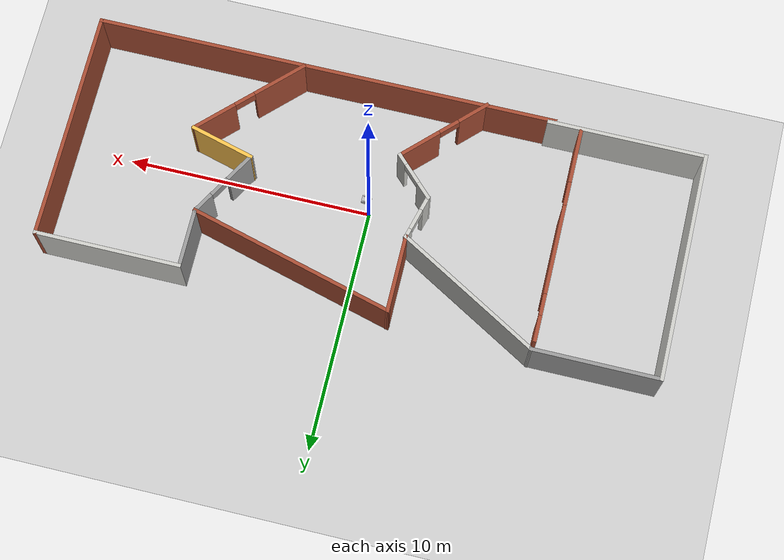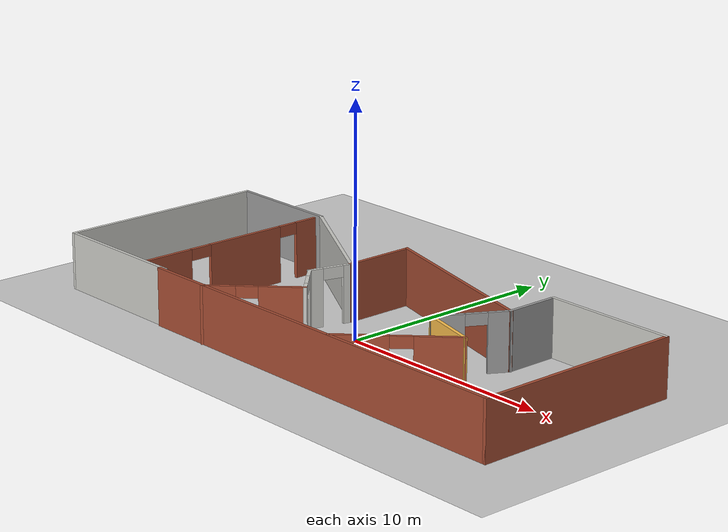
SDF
<sdf version="1.7">
 <world name="default">
  <model name="ground_plane">
   <static>1</static>
   <link name="link">
    <collision name="collision">
     <geometry><plane><normal>0 0 1</normal><size>100 100</size></plane></geometry>
     <surface><friction><ode><mu>100</mu><mu2>50</mu2></ode></friction></surface>
    </collision>
    <visual name="visual">
     <cast_shadows>0</cast_shadows>
     <geometry><plane><normal>0 0 1</normal><size>100 100</size></plane></geometry>
     <material>
      <script><uri>file://media/materials/scripts/gazebo.material</uri><name>Gazebo/Grey</name></script>
     </material>
    </visual>
   </link>
  </model>
  <model name="my_robot">
   <static>0</static>
   <link name="chassis">
    <pose>0 0 0.1 0 -0 0</pose>
    <collision name="collision"><geometry><box><size>0.4 0.2 0.1</size></box></geometry></collision>
    <visual name="visual"><geometry><box><size>0.4 0.2 0.1</size></box></geometry></visual>
    <collision name="caster_collision">
     <pose>-0.15 0 -0.05 0 -0 0</pose>
     <geometry><sphere><radius>0.05</radius></sphere></geometry>
     <surface><friction><ode><mu>0</mu><mu2>0</mu2><slip1>1</slip1><slip2>1</slip2></ode></friction></surface>
    </collision>
    <visual name="caster_visual">
     <pose>-0.15 0 -0.05 0 -0 0</pose>
     <geometry><sphere><radius>0.05</radius></sphere></geometry>
    </visual>
    <inertial>
     <inertia><ixx>1</ixx><ixy>0</ixy><ixz>0</ixz><iyy>1</iyy><iyz>0</iyz><izz>1</izz></inertia>
     <mass>1</mass>
    </inertial>
   </link>
   <link name="left_wheel">
    <pose>0.1 0.13 0.1 -0 1.5707 1.5707</pose>
    <collision name="collision">
     <geometry><cylinder><radius>0.1</radius><length>0.05</length></cylinder></geometry>
    </collision>
    <visual name="visual">
     <geometry><cylinder><radius>0.1</radius><length>0.05</length></cylinder></geometry>
    </visual>
    <inertial>
     <inertia><ixx>1</ixx><ixy>0</ixy><ixz>0</ixz><iyy>1</iyy><iyz>0</iyz><izz>1</izz></inertia>
     <mass>1</mass>
    </inertial>
   </link>
   <link name="right_wheel">
    <pose>0.1 -0.13 0.1 -0 1.5707 1.5707</pose>
    <collision name="collision">
     <geometry><cylinder><radius>0.1</radius><length>0.05</length></cylinder></geometry>
    </collision>
    <visual name="visual">
     <geometry><cylinder><radius>0.1</radius><length>0.05</length></cylinder></geometry>
    </visual>
    <inertial>
     <inertia><ixx>1</ixx><ixy>0</ixy><ixz>0</ixz><iyy>1</iyy><iyz>0</iyz><izz>1</izz></inertia>
     <mass>1</mass>
    </inertial>
   </link>
   <joint name="left_wheel_hinge" type="revolute">
    <pose>0 0 -0.03 0 -0 0</pose>
    <child>left_wheel</child>
    <parent>chassis</parent>
    <axis>
     <xyz>0 1 0</xyz>
     <limit><lower>-1e+16</lower><upper>1e+16</upper></limit>
     <dynamics><spring_reference>0</spring_reference><spring_stiffness>0</spring_stiffness></dynamics>
    </axis>
   </joint>
   <joint name="right_wheel_hinge" type="revolute">
    <pose>0 0 0.03 0 -0 0</pose>
    <child>right_wheel</child>
    <parent>chassis</parent>
    <axis>
     <xyz>0 1 0</xyz>
     <limit><lower>-1e+16</lower><upper>1e+16</upper></limit>
     <dynamics><spring_reference>0</spring_reference><spring_stiffness>0</spring_stiffness></dynamics>
    </axis>
   </joint>
   <pose>0.239032 -0.602186 0 2.7e-05 4e-06 5.4e-05</pose>
  </model>
  <model name="model">
   <pose>-0.146523 -0.097875 0 0 -0 0</pose>
   <link name="Wall_1">
    <collision name="Wall_1_Collision">
     <geometry><box><size>19 0.15 2.5</size></box></geometry>
     <pose>0 0 1.25 0 -0 0</pose>
    </collision>
    <visual name="Wall_1_Visual">
     <pose>0 0 1.25 0 -0 0</pose>
     <geometry><box><size>19 0.15 2.5</size></box></geometry>
     <material>
      <script><uri>file://media/materials/scripts/gazebo.material</uri><name>Gazebo/Bricks</name></script>
      <ambient>1 1 1 1</ambient>
     </material>
     <meta><layer>0</layer></meta>
    </visual>
    <pose>3.06136 -4.68852 0 0 -0 0</pose>
   </link>
   <link name="Wall_10">
    <collision name="Wall_10_Collision">
     <geometry><box><size>6.5 0.15 2.5</size></box></geometry>
     <pose>0 0 1.25 0 -0 0</pose>
    </collision>
    <visual name="Wall_10_Visual">
     <pose>0 0 1.25 0 -0 0</pose>
     <geometry><box><size>6.5 0.15 2.5</size></box></geometry>
     <material>
      <script><uri>file://media/materials/scripts/gazebo.material</uri><name>Gazebo/CeilingTiled</name></script>
      <ambient>0.996078 0.47451 0.0196078 1</ambient>
     </material>
     <meta><layer>0</layer></meta>
    </visual>
    <pose>-9.31137 -4.61268 0 0 -0 0</pose>
   </link>
   <link name="Wall_12">
    <pose>-7.45424 -0.069457 0 0 0 -1.5708</pose>
    <visual name="Wall_12_Visual_0">
     <pose>-3.956 0 1.25 0 -0 0</pose>
     <geometry><box><size>1.08801 0.15 2.5</size></box></geometry>
     <material>
      <script><uri>file://media/materials/scripts/gazebo.material</uri><name>Gazebo/Bricks</name></script>
      <ambient>1 1 1 1</ambient>
     </material>
     <meta><layer>0</layer></meta>
    </visual>
    <collision name="Wall_12_Collision_0">
     <geometry><box><size>1.08801 0.15 2.5</size></box></geometry>
     <pose>-3.956 0 1.25 0 -0 0</pose>
    </collision>
    <visual name="Wall_12_Visual_1">
     <pose>-0.646172 0 1.25 0 -0 0</pose>
     <geometry><box><size>3.73163 0.15 2.5</size></box></geometry>
     <material>
      <script><uri>file://media/materials/scripts/gazebo.material</uri><name>Gazebo/Bricks</name></script>
      <ambient>1 1 1 1</ambient>
     </material>
     <meta><layer>0</layer></meta>
    </visual>
    <collision name="Wall_12_Collision_1">
     <geometry><box><size>3.73163 0.15 2.5</size></box></geometry>
     <pose>-0.646172 0 1.25 0 -0 0</pose>
    </collision>
    <visual name="Wall_12_Visual_2">
     <pose>3.35982 0 1.25 0 -0 0</pose>
     <geometry><box><size>2.28035 0.15 2.5</size></box></geometry>
     <material>
      <script><uri>file://media/materials/scripts/gazebo.material</uri><name>Gazebo/Bricks</name></script>
      <ambient>1 1 1 1</ambient>
     </material>
     <meta><layer>0</layer></meta>
    </visual>
    <collision name="Wall_12_Collision_2">
     <geometry><box><size>2.28035 0.15 2.5</size></box></geometry>
     <pose>3.35982 0 1.25 0 -0 0</pose>
    </collision>
    <visual name="Wall_12_Visual_3">
     <pose>-2.96199 0 2.25 0 -0 0</pose>
     <geometry><box><size>0.9 0.15 0.5</size></box></geometry>
     <material>
      <script><uri>file://media/materials/scripts/gazebo.material</uri><name>Gazebo/Bricks</name></script>
      <ambient>1 1 1 1</ambient>
     </material>
     <meta><layer>0</layer></meta>
    </visual>
    <collision name="Wall_12_Collision_3">
     <geometry><box><size>0.9 0.15 0.5</size></box></geometry>
     <pose>-2.96199 0 2.25 0 -0 0</pose>
    </collision>
    <visual name="Wall_12_Visual_4">
     <pose>1.71965 0 2.25 0 -0 0</pose>
     <geometry><box><size>1 0.15 0.5</size></box></geometry>
     <material>
      <script><uri>file://media/materials/scripts/gazebo.material</uri><name>Gazebo/Bricks</name></script>
      <ambient>1 1 1 1</ambient>
     </material>
     <meta><layer>0</layer></meta>
    </visual>
    <collision name="Wall_12_Collision_4">
     <geometry><box><size>1 0.15 0.5</size></box></geometry>
     <pose>1.71965 0 2.25 0 -0 0</pose>
    </collision>
   </link>
   <link name="Wall_14">
    <pose>-1.91 0.543838 0 0 0 -1.8326</pose>
    <visual name="Wall_14_Visual_0">
     <pose>-0.778717 0 1.25 0 -0 0</pose>
     <geometry><box><size>0.442566 0.15 2.5</size></box></geometry>
     <material>
      <script><uri>file://media/materials/scripts/gazebo.material</uri><name>Gazebo/CeilingTiled</name></script>
      <ambient>1 0.764706 0.305882 1</ambient>
     </material>
     <meta><layer>0</layer></meta>
    </visual>
    <collision name="Wall_14_Collision_0">
     <geometry><box><size>0.442566 0.15 2.5</size></box></geometry>
     <pose>-0.778717 0 1.25 0 -0 0</pose>
    </collision>
    <visual name="Wall_14_Visual_1">
     <pose>0.671283 0 1.25 0 -0 0</pose>
     <geometry><box><size>0.657434 0.15 2.5</size></box></geometry>
     <material>
      <script><uri>file://media/materials/scripts/gazebo.material</uri><name>Gazebo/CeilingTiled</name></script>
      <ambient>1 0.764706 0.305882 1</ambient>
     </material>
     <meta><layer>0</layer></meta>
    </visual>
    <collision name="Wall_14_Collision_1">
     <geometry><box><size>0.657434 0.15 2.5</size></box></geometry>
     <pose>0.671283 0 1.25 0 -0 0</pose>
    </collision>
    <visual name="Wall_14_Visual_2">
     <pose>-0.107434 0 2.25 0 -0 0</pose>
     <geometry><box><size>0.9 0.15 0.5</size></box></geometry>
     <material>
      <script><uri>file://media/materials/scripts/gazebo.material</uri><name>Gazebo/CeilingTiled</name></script>
      <ambient>1 0.764706 0.305882 1</ambient>
     </material>
     <meta><layer>0</layer></meta>
    </visual>
    <collision name="Wall_14_Collision_2">
     <geometry><box><size>0.9 0.15 0.5</size></box></geometry>
     <pose>-0.107434 0 2.25 0 -0 0</pose>
    </collision>
   </link>
   <link name="Wall_15">
    <pose>-1.40695 -1.09211 0 0 0 -0.785398</pose>
    <visual name="Wall_15_Visual_0">
     <pose>-0.72296 0 1.25 0 -0 0</pose>
     <geometry><box><size>0.804079 0.15 2.5</size></box></geometry>
     <material>
      <script><uri>file://media/materials/scripts/gazebo.material</uri><name>Gazebo/CeilingTiled</name></script>
      <ambient>1 0.764706 0.305882 1</ambient>
     </material>
     <meta><layer>0</layer></meta>
    </visual>
    <collision name="Wall_15_Collision_0">
     <geometry><box><size>0.804079 0.15 2.5</size></box></geometry>
     <pose>-0.72296 0 1.25 0 -0 0</pose>
    </collision>
    <visual name="Wall_15_Visual_1">
     <pose>0.85204 0 1.25 0 -0 0</pose>
     <geometry><box><size>0.545921 0.15 2.5</size></box></geometry>
     <material>
      <script><uri>file://media/materials/scripts/gazebo.material</uri><name>Gazebo/CeilingTiled</name></script>
      <ambient>1 0.764706 0.305882 1</ambient>
     </material>
     <meta><layer>0</layer></meta>
    </visual>
    <collision name="Wall_15_Collision_1">
     <geometry><box><size>0.545921 0.15 2.5</size></box></geometry>
     <pose>0.85204 0 1.25 0 -0 0</pose>
    </collision>
    <visual name="Wall_15_Visual_2">
     <pose>0.129079 0 2.25 0 -0 0</pose>
     <geometry><box><size>0.9 0.15 0.5</size></box></geometry>
     <material>
      <script><uri>file://media/materials/scripts/gazebo.material</uri><name>Gazebo/CeilingTiled</name></script>
      <ambient>1 0.764706 0.305882 1</ambient>
     </material>
     <meta><layer>0</layer></meta>
    </visual>
    <collision name="Wall_15_Collision_2">
     <geometry><box><size>0.9 0.15 0.5</size></box></geometry>
     <pose>0.129079 0 2.25 0 -0 0</pose>
    </collision>
   </link>
   <link name="Wall_16">
    <pose>-2.11406 -3.28414 0 0 0 -2.35619</pose>
    <visual name="Wall_16_Visual_0">
     <pose>-1.16003 0 1.25 0 -0 0</pose>
     <geometry><box><size>1.92993 0.15 2.5</size></box></geometry>
     <material>
      <script><uri>file://media/materials/scripts/gazebo.material</uri><name>Gazebo/Bricks</name></script>
      <ambient>1 1 1 1</ambient>
     </material>
     <meta><layer>0</layer></meta>
    </visual>
    <collision name="Wall_16_Collision_0">
     <geometry><box><size>1.92993 0.15 2.5</size></box></geometry>
     <pose>-1.16003 0 1.25 0 -0 0</pose>
    </collision>
    <visual name="Wall_16_Visual_1">
     <pose>1.41497 0 1.25 0 -0 0</pose>
     <geometry><box><size>1.42007 0.15 2.5</size></box></geometry>
     <material>
      <script><uri>file://media/materials/scripts/gazebo.material</uri><name>Gazebo/Bricks</name></script>
      <ambient>1 1 1 1</ambient>
     </material>
     <meta><layer>0</layer></meta>
    </visual>
    <collision name="Wall_16_Collision_1">
     <geometry><box><size>1.42007 0.15 2.5</size></box></geometry>
     <pose>1.41497 0 1.25 0 -0 0</pose>
    </collision>
    <visual name="Wall_16_Visual_2">
     <pose>0.25493 0 2.25 0 -0 0</pose>
     <geometry><box><size>0.9 0.15 0.5</size></box></geometry>
     <material>
      <script><uri>file://media/materials/scripts/gazebo.material</uri><name>Gazebo/Bricks</name></script>
      <ambient>1 1 1 1</ambient>
     </material>
     <meta><layer>0</layer></meta>
    </visual>
    <collision name="Wall_16_Collision_2">
     <geometry><box><size>0.9 0.15 0.5</size></box></geometry>
     <pose>0.25493 0 2.25 0 -0 0</pose>
    </collision>
   </link>
   <link name="Wall_18">
    <pose>5.86137 0.969136 0 0 0 -2.0944</pose>
    <visual name="Wall_18_Visual_0">
     <pose>-1.13596 0 1.25 0 -0 0</pose>
     <geometry><box><size>0.978077 0.15 2.5</size></box></geometry>
     <material>
      <script><uri>file://media/materials/scripts/gazebo.material</uri><name>Gazebo/Grey</name></script>
      <ambient>1 1 1 1</ambient>
     </material>
     <meta><layer>0</layer></meta>
    </visual>
    <collision name="Wall_18_Collision_0">
     <geometry><box><size>0.978077 0.15 2.5</size></box></geometry>
     <pose>-1.13596 0 1.25 0 -0 0</pose>
    </collision>
    <visual name="Wall_18_Visual_1">
     <pose>0.939039 0 1.25 0 -0 0</pose>
     <geometry><box><size>1.37192 0.15 2.5</size></box></geometry>
     <material>
      <script><uri>file://media/materials/scripts/gazebo.material</uri><name>Gazebo/Grey</name></script>
      <ambient>1 1 1 1</ambient>
     </material>
     <meta><layer>0</layer></meta>
    </visual>
    <collision name="Wall_18_Collision_1">
     <geometry><box><size>1.37192 0.15 2.5</size></box></geometry>
     <pose>0.939039 0 1.25 0 -0 0</pose>
    </collision>
    <visual name="Wall_18_Visual_2">
     <pose>-0.196923 0 2.25 0 -0 0</pose>
     <geometry><box><size>0.9 0.15 0.5</size></box></geometry>
     <material>
      <script><uri>file://media/materials/scripts/gazebo.material</uri><name>Gazebo/Grey</name></script>
      <ambient>1 1 1 1</ambient>
     </material>
     <meta><layer>0</layer></meta>
    </visual>
    <collision name="Wall_18_Collision_2">
     <geometry><box><size>0.9 0.15 0.5</size></box></geometry>
     <pose>-0.196923 0 2.25 0 -0 0</pose>
    </collision>
   </link>
   <link name="Wall_19">
    <collision name="Wall_19_Collision">
     <geometry><box><size>2.75 0.15 2.5</size></box></geometry>
     <pose>0 0 1.25 0 -0 0</pose>
    </collision>
    <visual name="Wall_19_Visual">
     <pose>0 0 1.25 0 -0 0</pose>
     <geometry><box><size>2.75 0.15 2.5</size></box></geometry>
     <material>
      <script><uri>file://media/materials/scripts/gazebo.material</uri><name>Gazebo/Grey</name></script>
      <ambient>1 0.764706 0.305882 1</ambient>
     </material>
     <meta><layer>0</layer></meta>
    </visual>
    <pose>6.34207 -0.709668 0 0 0 -0.261799</pose>
   </link>
   <link name="Wall_2">
    <collision name="Wall_2_Collision">
     <geometry><box><size>9.5 0.15 2.5</size></box></geometry>
     <pose>0 0 1.25 0 -0 0</pose>
    </collision>
    <visual name="Wall_2_Visual">
     <pose>0 0 1.25 0 -0 0</pose>
     <geometry><box><size>9.5 0.15 2.5</size></box></geometry>
     <material>
      <script><uri>file://media/materials/scripts/gazebo.material</uri><name>Gazebo/Bricks</name></script>
      <ambient>1 1 1 1</ambient>
     </material>
     <meta><layer>0</layer></meta>
    </visual>
    <pose>12.4864 -0.013524 0 0 -0 1.5708</pose>
   </link>
   <link name="Wall_20">
    <pose>5.79465 -2.84925 0 0 0 -2.35619</pose>
    <visual name="Wall_20_Visual_0">
     <pose>-1.63888 0 1.25 0 -0 0</pose>
     <geometry><box><size>1.97224 0.15 2.5</size></box></geometry>
     <material>
      <script><uri>file://media/materials/scripts/gazebo.material</uri><name>Gazebo/Bricks</name></script>
      <ambient>1 1 1 1</ambient>
     </material>
     <meta><layer>0</layer></meta>
    </visual>
    <collision name="Wall_20_Collision_0">
     <geometry><box><size>1.97224 0.15 2.5</size></box></geometry>
     <pose>-1.63888 0 1.25 0 -0 0</pose>
    </collision>
    <visual name="Wall_20_Visual_1">
     <pose>1.43612 0 1.25 0 -0 0</pose>
     <geometry><box><size>2.37776 0.15 2.5</size></box></geometry>
     <material>
      <script><uri>file://media/materials/scripts/gazebo.material</uri><name>Gazebo/Bricks</name></script>
      <ambient>1 1 1 1</ambient>
     </material>
     <meta><layer>0</layer></meta>
    </visual>
    <collision name="Wall_20_Collision_1">
     <geometry><box><size>2.37776 0.15 2.5</size></box></geometry>
     <pose>1.43612 0 1.25 0 -0 0</pose>
    </collision>
    <visual name="Wall_20_Visual_2">
     <pose>-0.202764 0 2.25 0 -0 0</pose>
     <geometry><box><size>0.9 0.15 0.5</size></box></geometry>
     <material>
      <script><uri>file://media/materials/scripts/gazebo.material</uri><name>Gazebo/Bricks</name></script>
      <ambient>1 1 1 1</ambient>
     </material>
     <meta><layer>0</layer></meta>
    </visual>
    <collision name="Wall_20_Collision_2">
     <geometry><box><size>0.9 0.15 0.5</size></box></geometry>
     <pose>-0.202764 0 2.25 0 -0 0</pose>
    </collision>
   </link>
   <link name="Wall_3">
    <collision name="Wall_3_Collision">
     <geometry><box><size>6 0.15 2.5</size></box></geometry>
     <pose>0 0 1.25 0 -0 0</pose>
    </collision>
    <visual name="Wall_3_Visual">
     <pose>0 0 1.25 0 -0 0</pose>
     <geometry><box><size>6 0.15 2.5</size></box></geometry>
     <material>
      <script><uri>file://media/materials/scripts/gazebo.material</uri><name>Gazebo/CeilingTiled</name></script>
      <ambient>0.996078 0.47451 0.0196078 1</ambient>
     </material>
     <meta><layer>0</layer></meta>
    </visual>
    <pose>9.56137 4.66148 0 0 -0 3.14159</pose>
   </link>
   <link name="Wall_4">
    <collision name="Wall_4_Collision">
     <geometry><box><size>2.5 0.15 2.5</size></box></geometry>
     <pose>0 0 1.25 0 -0 0</pose>
    </collision>
    <visual name="Wall_4_Visual">
     <pose>0 0 1.25 0 -0 0</pose>
     <geometry><box><size>2.5 0.15 2.5</size></box></geometry>
     <material>
      <script><uri>file://media/materials/scripts/gazebo.material</uri><name>Gazebo/Grey</name></script>
      <ambient>1 1 1 1</ambient>
     </material>
     <meta><layer>0</layer></meta>
    </visual>
    <pose>6.63636 3.48647 0 0 0 -1.5708</pose>
   </link>
   <link name="Wall_5">
    <collision name="Wall_5_Collision">
     <geometry><box><size>8.75 0.15 2.5</size></box></geometry>
     <pose>0 0 1.25 0 -0 0</pose>
    </collision>
    <visual name="Wall_5_Visual">
     <pose>0 0 1.25 0 -0 0</pose>
     <geometry><box><size>8.75 0.15 2.5</size></box></geometry>
     <material>
      <script><uri>file://media/materials/scripts/gazebo.material</uri><name>Gazebo/Bricks</name></script>
      <ambient>1 1 1 1</ambient>
     </material>
     <meta><layer>0</layer></meta>
    </visual>
    <pose>2.48288 3.4244 0 0 -0 2.87979</pose>
   </link>
   <link name="Wall_6">
    <collision name="Wall_6_Collision">
     <geometry><box><size>3.25 0.15 2.5</size></box></geometry>
     <pose>0 0 1.25 0 -0 0</pose>
    </collision>
    <visual name="Wall_6_Visual">
     <pose>0 0 1.25 0 -0 0</pose>
     <geometry><box><size>3.25 0.15 2.5</size></box></geometry>
     <material>
      <script><uri>file://media/materials/scripts/gazebo.material</uri><name>Gazebo/Bricks</name></script>
      <ambient>1 1 1 1</ambient>
     </material>
     <meta><layer>0</layer></meta>
    </visual>
    <pose>-1.6706 2.98732 0 0 0 -1.5708</pose>
   </link>
   <link name="Wall_7">
    <collision name="Wall_7_Collision">
     <geometry><box><size>6.75 0.15 2.5</size></box></geometry>
     <pose>0 0 1.25 0 -0 0</pose>
    </collision>
    <visual name="Wall_7_Visual">
     <pose>0 0 1.25 0 -0 0</pose>
     <geometry><box><size>6.75 0.15 2.5</size></box></geometry>
     <material>
      <script><uri>file://media/materials/scripts/gazebo.material</uri><name>Gazebo/CeilingTiled</name></script>
      <ambient>1 0.764706 0.305882 1</ambient>
     </material>
     <meta><layer>0</layer></meta>
    </visual>
    <pose>-4.52848 3.08732 0 0 -0 2.61799</pose>
   </link>
   <link name="Wall_8">
    <collision name="Wall_8_Collision">
     <geometry><box><size>5.25 0.15 2.5</size></box></geometry>
     <pose>0 0 1.25 0 -0 0</pose>
    </collision>
    <visual name="Wall_8_Visual">
     <pose>0 0 1.25 0 -0 0</pose>
     <geometry><box><size>5.25 0.15 2.5</size></box></geometry>
     <material>
      <script><uri>file://media/materials/scripts/gazebo.material</uri><name>Gazebo/Grey</name></script>
      <ambient>1 1 1 1</ambient>
     </material>
     <meta><layer>0</layer></meta>
    </visual>
    <pose>-9.93637 4.73732 0 0 -0 3.14159</pose>
   </link>
   <link name="Wall_9">
    <collision name="Wall_9_Collision">
     <geometry><box><size>9.5 0.15 2.5</size></box></geometry>
     <pose>0 0 1.25 0 -0 0</pose>
    </collision>
    <visual name="Wall_9_Visual">
     <pose>0 0 1.25 0 -0 0</pose>
     <geometry><box><size>9.5 0.15 2.5</size></box></geometry>
     <material>
      <script><uri>file://media/materials/scripts/gazebo.material</uri><name>Gazebo/CeilingTiled</name></script>
      <ambient>1 1 1 1</ambient>
     </material>
     <meta><layer>0</layer></meta>
    </visual>
    <pose>-12.4864 0.062319 0 0 0 -1.5708</pose>
   </link>
   <static>1</static>
  </model>
 </world>
</sdf>
